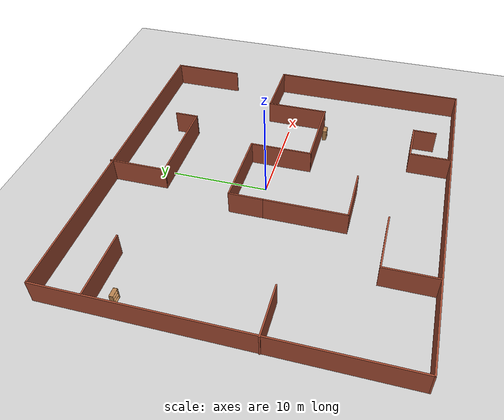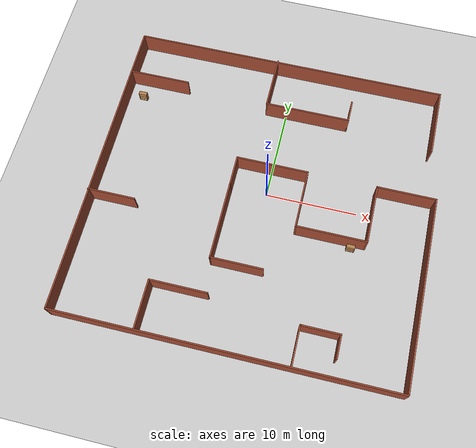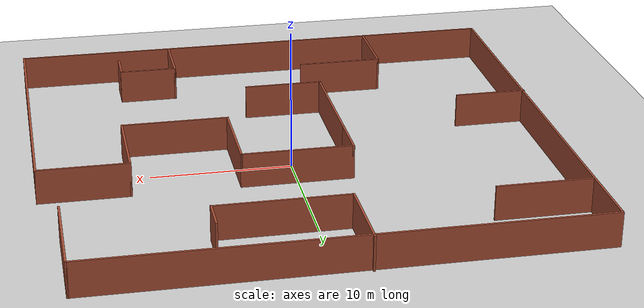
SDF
<sdf version="1.7">
 <world name="default">
  <light name="sun" type="directional">
   <pose>0 0 10 0 -0 0</pose>
   <diffuse>0.8 0.8 0.8 1</diffuse>
   <specular>0.2 0.2 0.2 1</specular>
   <attenuation>
    <range>1000</range>
    <constant>0.9</constant>
    <linear>0.01</linear>
    <quadratic>0.001</quadratic>
   </attenuation>
   <direction>-0.5 0.1 -0.9</direction>
   <spot><inner_angle>0</inner_angle><outer_angle>0</outer_angle><falloff>0</falloff></spot>
  </light>
  <model name="ground_plane">
   <static>1</static>
   <link name="link">
    <collision name="collision">
     <geometry><plane><normal>0 0 1</normal><size>100 100</size></plane></geometry>
     <surface>
      <contact><collide_bitmask>65535</collide_bitmask></contact>
      <friction><ode><mu>100</mu><mu2>50</mu2></ode></friction>
     </surface>
    </collision>
    <visual name="visual">
     <cast_shadows>0</cast_shadows>
     <geometry><plane><normal>0 0 1</normal><size>100 100</size></plane></geometry>
     <material>
      <script><uri>file://media/materials/scripts/gazebo.material</uri><name>Gazebo/Grey</name></script>
     </material>
    </visual>
   </link>
  </model>
  <gravity>0 0 -9.8</gravity>
  <magnetic_field>6e-06 2.3e-05 -4.2e-05</magnetic_field>
  <atmosphere type="adiabatic"/>
  <physics type="ode">
   <max_step_size>0.001</max_step_size>
   <real_time_factor>1</real_time_factor>
   <real_time_update_rate>1000</real_time_update_rate>
  </physics>
  <scene><ambient>0.4 0.4 0.4 1</ambient><background>0.7 0.7 0.7 1</background><shadows>1</shadows></scene>
  <audio><device>default</device></audio>
  <spherical_coordinates>
   <surface_model>EARTH_WGS84</surface_model>
   <latitude_deg>0</latitude_deg>
   <longitude_deg>0</longitude_deg>
   <elevation>0</elevation>
   <heading_deg>0</heading_deg>
  </spherical_coordinates>
  <model name="first_house">
   <pose>-0.306004 -1.08182 0 0 -0 0</pose>
   <link name="Wall_10">
    <collision name="Wall_10_Collision">
     <geometry><box><size>36.5 0.15 2.5</size></box></geometry>
     <pose>0 0 1.25 0 -0 0</pose>
    </collision>
    <visual name="Wall_10_Visual">
     <pose>0 0 1.25 0 -0 0</pose>
     <geometry><box><size>36.5 0.15 2.5</size></box></geometry>
     <material>
      <script><uri>file://media/materials/scripts/gazebo.material</uri><name>Gazebo/Bricks</name></script>
      <ambient>1 1 1 1</ambient>
     </material>
     <meta><layer>0</layer></meta>
    </visual>
    <pose>0.030999 -16.8913 0 0 -0 3.14159</pose>
   </link>
   <link name="Wall_11">
    <collision name="Wall_11_Collision">
     <geometry><box><size>33.75 0.15 2.5</size></box></geometry>
     <pose>0 0 1.25 0 -0 0</pose>
    </collision>
    <visual name="Wall_11_Visual">
     <pose>0 0 1.25 0 -0 0</pose>
     <geometry><box><size>33.75 0.15 2.5</size></box></geometry>
     <material>
      <script><uri>file://media/materials/scripts/gazebo.material</uri><name>Gazebo/Bricks</name></script>
      <ambient>1 1 1 1</ambient>
     </material>
     <meta><layer>0</layer></meta>
    </visual>
    <pose>-18.144 -0.091312 0 0 -0 1.5708</pose>
   </link>
   <link name="Wall_16">
    <collision name="Wall_16_Collision">
     <geometry><box><size>8.5 0.15 2.5</size></box></geometry>
     <pose>0 0 1.25 0 -0 0</pose>
    </collision>
    <visual name="Wall_16_Visual">
     <pose>0 0 1.25 0 -0 0</pose>
     <geometry><box><size>8.5 0.15 2.5</size></box></geometry>
     <material>
      <script><uri>file://media/materials/scripts/gazebo.material</uri><name>Gazebo/Bricks</name></script>
      <ambient>1 1 1 1</ambient>
     </material>
     <meta><layer>0</layer></meta>
    </visual>
    <pose>-3.594 -3.81631 0 0 -0 -1.5708</pose>
   </link>
   <link name="Wall_17">
    <collision name="Wall_17_Collision">
     <geometry><box><size>5.75 0.15 2.5</size></box></geometry>
     <pose>0 0 1.25 0 -0 0</pose>
    </collision>
    <visual name="Wall_17_Visual">
     <pose>0 0 1.25 0 -0 0</pose>
     <geometry><box><size>5.75 0.15 2.5</size></box></geometry>
     <material>
      <script><uri>file://media/materials/scripts/gazebo.material</uri><name>Gazebo/Bricks</name></script>
      <ambient>1 1 1 1</ambient>
     </material>
     <meta><layer>0</layer></meta>
    </visual>
    <pose>-0.794001 -7.99131 0 0 -0 0</pose>
   </link>
   <link name="Wall_19">
    <collision name="Wall_19_Collision">
     <geometry><box><size>5.25 0.15 2.5</size></box></geometry>
     <pose>0 0 1.25 0 -0 0</pose>
    </collision>
    <visual name="Wall_19_Visual">
     <pose>0 0 1.25 0 -0 0</pose>
     <geometry><box><size>5.25 0.15 2.5</size></box></geometry>
     <material>
      <script><uri>file://media/materials/scripts/gazebo.material</uri><name>Gazebo/Bricks</name></script>
      <ambient>1 1 1 1</ambient>
     </material>
     <meta><layer>0</layer></meta>
    </visual>
    <pose>-15.656 -3.56268 0 0 -0 0</pose>
   </link>
   <link name="Wall_23">
    <collision name="Wall_23_Collision">
     <geometry><box><size>6.75 0.15 2.5</size></box></geometry>
     <pose>0 0 1.25 0 -0 0</pose>
    </collision>
    <visual name="Wall_23_Visual">
     <pose>0 0 1.25 0 -0 0</pose>
     <geometry><box><size>6.75 0.15 2.5</size></box></geometry>
     <material>
      <script><uri>file://media/materials/scripts/gazebo.material</uri><name>Gazebo/Bricks</name></script>
      <ambient>1 1 1 1</ambient>
     </material>
     <meta><layer>0</layer></meta>
    </visual>
    <pose>-14.7188 11.6902 0 0 -0 0</pose>
   </link>
   <link name="Wall_25">
    <collision name="Wall_25_Collision">
     <geometry><box><size>35.25 0.15 2.5</size></box></geometry>
     <pose>0 0 1.25 0 -0 0</pose>
    </collision>
    <visual name="Wall_25_Visual">
     <pose>0 0 1.25 0 -0 0</pose>
     <geometry><box><size>35.25 0.15 2.5</size></box></geometry>
     <material>
      <script><uri>file://media/materials/scripts/gazebo.material</uri><name>Gazebo/Bricks</name></script>
      <ambient>1 1 1 1</ambient>
     </material>
     <meta><layer>0</layer></meta>
    </visual>
    <pose>-0.594001 16.7087 0 0 -0 0</pose>
   </link>
   <link name="Wall_26">
    <collision name="Wall_26_Collision">
     <geometry><box><size>7.5 0.15 2.5</size></box></geometry>
     <pose>0 0 1.25 0 -0 0</pose>
    </collision>
    <visual name="Wall_26_Visual">
     <pose>0 0 1.25 0 -0 0</pose>
     <geometry><box><size>7.5 0.15 2.5</size></box></geometry>
     <material>
      <script><uri>file://media/materials/scripts/gazebo.material</uri><name>Gazebo/Bricks</name></script>
      <ambient>1 1 1 1</ambient>
     </material>
     <meta><layer>0</layer></meta>
    </visual>
    <pose>16.956 13.0337 0 0 -0 -1.5708</pose>
   </link>
   <link name="Wall_28">
    <collision name="Wall_28_Collision">
     <geometry><box><size>5.25 0.15 2.5</size></box></geometry>
     <pose>0 0 1.25 0 -0 0</pose>
    </collision>
    <visual name="Wall_28_Visual">
     <pose>0 0 1.25 0 -0 0</pose>
     <geometry><box><size>5.25 0.15 2.5</size></box></geometry>
     <material>
      <script><uri>file://media/materials/scripts/gazebo.material</uri><name>Gazebo/Bricks</name></script>
      <ambient>1 1 1 1</ambient>
     </material>
     <meta><layer>0</layer></meta>
    </visual>
    <pose>-8.98255 -14.2361 0 0 -0 1.5708</pose>
   </link>
   <link name="Wall_29">
    <collision name="Wall_29_Collision">
     <geometry><box><size>6.25 0.15 2.5</size></box></geometry>
     <pose>0 0 1.25 0 -0 0</pose>
    </collision>
    <visual name="Wall_29_Visual">
     <pose>0 0 1.25 0 -0 0</pose>
     <geometry><box><size>6.25 0.15 2.5</size></box></geometry>
     <material>
      <script><uri>file://media/materials/scripts/gazebo.material</uri><name>Gazebo/Bricks</name></script>
      <ambient>1 1 1 1</ambient>
     </material>
     <meta><layer>0</layer></meta>
    </visual>
    <pose>-5.93255 -11.6861 0 0 -0 0</pose>
   </link>
   <link name="Wall_3">
    <collision name="Wall_3_Collision">
     <geometry><box><size>3.5 0.15 2.5</size></box></geometry>
     <pose>0 0 1.25 0 -0 0</pose>
    </collision>
    <visual name="Wall_3_Visual">
     <pose>0 0 1.25 0 -0 0</pose>
     <geometry><box><size>3.5 0.15 2.5</size></box></geometry>
     <material>
      <script><uri>file://media/materials/scripts/gazebo.material</uri><name>Gazebo/Bricks</name></script>
      <ambient>1 1 1 1</ambient>
     </material>
     <meta><layer>0</layer></meta>
    </visual>
    <pose>-3.594 2.03369 0 0 -0 1.5708</pose>
   </link>
   <link name="Wall_31">
    <collision name="Wall_31_Collision">
     <geometry><box><size>4.25 0.15 2.5</size></box></geometry>
     <pose>0 0 1.25 0 -0 0</pose>
    </collision>
    <visual name="Wall_31_Visual">
     <pose>0 0 1.25 0 -0 0</pose>
     <geometry><box><size>4.25 0.15 2.5</size></box></geometry>
     <material>
      <script><uri>file://media/materials/scripts/gazebo.material</uri><name>Gazebo/Bricks</name></script>
      <ambient>1 1 1 1</ambient>
     </material>
     <meta><layer>0</layer></meta>
    </visual>
    <pose>6.85713 -14.7403 0 0 -0 1.5708</pose>
   </link>
   <link name="Wall_32">
    <collision name="Wall_32_Collision">
     <geometry><box><size>4.25 0.15 2.5</size></box></geometry>
     <pose>0 0 1.25 0 -0 0</pose>
    </collision>
    <visual name="Wall_32_Visual">
     <pose>0 0 1.25 0 -0 0</pose>
     <geometry><box><size>4.25 0.15 2.5</size></box></geometry>
     <material>
      <script><uri>file://media/materials/scripts/gazebo.material</uri><name>Gazebo/Bricks</name></script>
      <ambient>1 1 1 1</ambient>
     </material>
     <meta><layer>0</layer></meta>
    </visual>
    <pose>8.90713 -12.6903 0 0 -0 0</pose>
   </link>
   <link name="Wall_33">
    <collision name="Wall_33_Collision">
     <geometry><box><size>2.5 0.15 2.5</size></box></geometry>
     <pose>0 0 1.25 0 -0 0</pose>
    </collision>
    <visual name="Wall_33_Visual">
     <pose>0 0 1.25 0 -0 0</pose>
     <geometry><box><size>2.5 0.15 2.5</size></box></geometry>
     <material>
      <script><uri>file://media/materials/scripts/gazebo.material</uri><name>Gazebo/Bricks</name></script>
      <ambient>1 1 1 1</ambient>
     </material>
     <meta><layer>0</layer></meta>
    </visual>
    <pose>10.9571 -13.8653 0 0 -0 -1.5708</pose>
   </link>
   <link name="Wall_35">
    <collision name="Wall_35_Collision">
     <geometry><box><size>6 0.15 2.5</size></box></geometry>
     <pose>0 0 1.25 0 -0 0</pose>
    </collision>
    <visual name="Wall_35_Visual">
     <pose>0 0 1.25 0 -0 0</pose>
     <geometry><box><size>6 0.15 2.5</size></box></geometry>
     <material>
      <script><uri>file://media/materials/scripts/gazebo.material</uri><name>Gazebo/Bricks</name></script>
      <ambient>1 1 1 1</ambient>
     </material>
     <meta><layer>0</layer></meta>
    </visual>
    <pose>-1.9711 13.9663 0 0 -0 -1.5708</pose>
   </link>
   <link name="Wall_36">
    <collision name="Wall_36_Collision">
     <geometry><box><size>9.5 0.15 2.5</size></box></geometry>
     <pose>0 0 1.25 0 -0 0</pose>
    </collision>
    <visual name="Wall_36_Visual">
     <pose>0 0 1.25 0 -0 0</pose>
     <geometry><box><size>9.5 0.15 2.5</size></box></geometry>
     <material>
      <script><uri>file://media/materials/scripts/gazebo.material</uri><name>Gazebo/Bricks</name></script>
      <ambient>1 1 1 1</ambient>
     </material>
     <meta><layer>0</layer></meta>
    </visual>
    <pose>2.7039 11.0413 0 0 -0 0</pose>
   </link>
   <link name="Wall_37">
    <collision name="Wall_37_Collision">
     <geometry><box><size>2.5 0.15 2.5</size></box></geometry>
     <pose>0 0 1.25 0 -0 0</pose>
    </collision>
    <visual name="Wall_37_Visual">
     <pose>0 0 1.25 0 -0 0</pose>
     <geometry><box><size>2.5 0.15 2.5</size></box></geometry>
     <material>
      <script><uri>file://media/materials/scripts/gazebo.material</uri><name>Gazebo/Bricks</name></script>
      <ambient>1 1 1 1</ambient>
     </material>
     <meta><layer>0</layer></meta>
    </visual>
    <pose>7.3789 12.2163 0 0 -0 1.5708</pose>
   </link>
   <link name="Wall_4">
    <collision name="Wall_4_Collision">
     <geometry><box><size>8 0.15 2.5</size></box></geometry>
     <pose>0 0 1.25 0 -0 0</pose>
    </collision>
    <visual name="Wall_4_Visual">
     <pose>0 0 1.25 0 -0 0</pose>
     <geometry><box><size>8 0.15 2.5</size></box></geometry>
     <material>
      <script><uri>file://media/materials/scripts/gazebo.material</uri><name>Gazebo/Bricks</name></script>
      <ambient>1 1 1 1</ambient>
     </material>
     <meta><layer>0</layer></meta>
    </visual>
    <pose>0.330999 3.70869 0 0 -0 0</pose>
   </link>
   <link name="Wall_5">
    <collision name="Wall_5_Collision">
     <geometry><box><size>6.5 0.15 2.5</size></box></geometry>
     <pose>0 0 1.25 0 -0 0</pose>
    </collision>
    <visual name="Wall_5_Visual">
     <pose>0 0 1.25 0 -0 0</pose>
     <geometry><box><size>6.5 0.15 2.5</size></box></geometry>
     <material>
      <script><uri>file://media/materials/scripts/gazebo.material</uri><name>Gazebo/Bricks</name></script>
      <ambient>1 1 1 1</ambient>
     </material>
     <meta><layer>0</layer></meta>
    </visual>
    <pose>4.256 0.533688 0 0 -0 -1.5708</pose>
   </link>
   <link name="Wall_6">
    <collision name="Wall_6_Collision">
     <geometry><box><size>7.75 0.15 2.5</size></box></geometry>
     <pose>0 0 1.25 0 -0 0</pose>
    </collision>
    <visual name="Wall_6_Visual">
     <pose>0 0 1.25 0 -0 0</pose>
     <geometry><box><size>7.75 0.15 2.5</size></box></geometry>
     <material>
      <script><uri>file://media/materials/scripts/gazebo.material</uri><name>Gazebo/Bricks</name></script>
      <ambient>1 1 1 1</ambient>
     </material>
     <meta><layer>0</layer></meta>
    </visual>
    <pose>8.056 -2.64131 0 0 -0 0</pose>
   </link>
   <link name="Wall_7">
    <collision name="Wall_7_Collision">
     <geometry><box><size>6.5 0.15 2.5</size></box></geometry>
     <pose>0 0 1.25 0 -0 0</pose>
    </collision>
    <visual name="Wall_7_Visual">
     <pose>0 0 1.25 0 -0 0</pose>
     <geometry><box><size>6.5 0.15 2.5</size></box></geometry>
     <material>
      <script><uri>file://media/materials/scripts/gazebo.material</uri><name>Gazebo/Bricks</name></script>
      <ambient>1 1 1 1</ambient>
     </material>
     <meta><layer>0</layer></meta>
    </visual>
    <pose>11.856 0.533688 0 0 -0 1.5708</pose>
   </link>
   <link name="Wall_8">
    <collision name="Wall_8_Collision">
     <geometry><box><size>6.5 0.15 2.5</size></box></geometry>
     <pose>0 0 1.25 0 -0 0</pose>
    </collision>
    <visual name="Wall_8_Visual">
     <pose>0 0 1.25 0 -0 0</pose>
     <geometry><box><size>6.5 0.15 2.5</size></box></geometry>
     <material>
      <script><uri>file://media/materials/scripts/gazebo.material</uri><name>Gazebo/Bricks</name></script>
      <ambient>1 1 1 1</ambient>
     </material>
     <meta><layer>0</layer></meta>
    </visual>
    <pose>15.031 3.70869 0 0 -0 0</pose>
   </link>
   <link name="Wall_9">
    <collision name="Wall_9_Collision">
     <geometry><box><size>20.75 0.15 2.5</size></box></geometry>
     <pose>0 0 1.25 0 -0 0</pose>
    </collision>
    <visual name="Wall_9_Visual">
     <pose>0 0 1.25 0 -0 0</pose>
     <geometry><box><size>20.75 0.15 2.5</size></box></geometry>
     <material>
      <script><uri>file://media/materials/scripts/gazebo.material</uri><name>Gazebo/Bricks</name></script>
      <ambient>1 1 1 1</ambient>
     </material>
     <meta><layer>0</layer></meta>
    </visual>
    <pose>18.206 -6.59131 0 0 -0 -1.5708</pose>
   </link>
   <static>1</static>
  </model>
  <model name="bookshelf">
   <static>1</static>
   <link name="link">
    <inertial><mass>1</mass></inertial>
    <collision name="back">
     <pose>0 0.005 0.6 0 -0 0</pose>
     <geometry><box><size>0.9 0.01 1.2</size></box></geometry>
    </collision>
    <visual name="visual1">
     <pose>0 0.005 0.6 0 -0 0</pose>
     <geometry><box><size>0.9 0.01 1.2</size></box></geometry>
     <material>
      <script><uri>file://media/materials/scripts/gazebo.material</uri><name>Gazebo/Wood</name></script>
     </material>
    </visual>
    <collision name="left_side">
     <pose>0.45 -0.195 0.6 0 -0 0</pose>
     <geometry><box><size>0.02 0.4 1.2</size></box></geometry>
    </collision>
    <visual name="visual2">
     <pose>0.45 -0.195 0.6 0 -0 0</pose>
     <geometry><box><size>0.02 0.4 1.2</size></box></geometry>
     <material>
      <script><uri>file://media/materials/scripts/gazebo.material</uri><name>Gazebo/Wood</name></script>
     </material>
    </visual>
    <collision name="right_side">
     <pose>-0.45 -0.195 0.6 0 -0 0</pose>
     <geometry><box><size>0.02 0.4 1.2</size></box></geometry>
    </collision>
    <visual name="visual3">
     <pose>-0.45 -0.195 0.6 0 -0 0</pose>
     <geometry><box><size>0.02 0.4 1.2</size></box></geometry>
     <material>
      <script><uri>file://media/materials/scripts/gazebo.material</uri><name>Gazebo/Wood</name></script>
     </material>
    </visual>
    <collision name="bottom">
     <pose>0 -0.195 0.03 0 -0 0</pose>
     <geometry><box><size>0.88 0.4 0.06</size></box></geometry>
    </collision>
    <visual name="visual4">
     <pose>0 -0.195 0.03 0 -0 0</pose>
     <geometry><box><size>0.88 0.4 0.06</size></box></geometry>
     <material>
      <script><uri>file://media/materials/scripts/gazebo.material</uri><name>Gazebo/Wood</name></script>
     </material>
    </visual>
    <collision name="top">
     <pose>0 -0.195 1.19 0 -0 0</pose>
     <geometry><box><size>0.88 0.4 0.02</size></box></geometry>
    </collision>
    <visual name="visual5">
     <pose>0 -0.195 1.19 0 -0 0</pose>
     <geometry><box><size>0.88 0.4 0.02</size></box></geometry>
     <material>
      <script><uri>file://media/materials/scripts/gazebo.material</uri><name>Gazebo/Wood</name></script>
     </material>
    </visual>
    <collision name="low_shelf">
     <pose>0 -0.195 0.43 0 -0 0</pose>
     <geometry><box><size>0.88 0.4 0.02</size></box></geometry>
    </collision>
    <visual name="visual6">
     <pose>0 -0.195 0.43 0 -0 0</pose>
     <geometry><box><size>0.88 0.4 0.02</size></box></geometry>
     <material>
      <script><uri>file://media/materials/scripts/gazebo.material</uri><name>Gazebo/Wood</name></script>
     </material>
    </visual>
    <collision name="high_shelf">
     <pose>0 -0.195 0.8 0 -0 0</pose>
     <geometry><box><size>0.88 0.4 0.02</size></box></geometry>
    </collision>
    <visual name="visual7">
     <pose>0 -0.195 0.8 0 -0 0</pose>
     <geometry><box><size>0.88 0.4 0.02</size></box></geometry>
     <material>
      <script><uri>file://media/materials/scripts/gazebo.material</uri><name>Gazebo/Wood</name></script>
     </material>
    </visual>
   </link>
   <pose>-16.7291 8.96853 0 0 -0 0</pose>
  </model>
  <model name="bookshelf_0">
   <static>1</static>
   <link name="link">
    <inertial><mass>1</mass></inertial>
    <collision name="back">
     <pose>0 0.005 0.6 0 -0 0</pose>
     <geometry><box><size>0.9 0.01 1.2</size></box></geometry>
    </collision>
    <visual name="visual1">
     <pose>0 0.005 0.6 0 -0 0</pose>
     <geometry><box><size>0.9 0.01 1.2</size></box></geometry>
     <material>
      <script><uri>file://media/materials/scripts/gazebo.material</uri><name>Gazebo/Wood</name></script>
     </material>
    </visual>
    <collision name="left_side">
     <pose>0.45 -0.195 0.6 0 -0 0</pose>
     <geometry><box><size>0.02 0.4 1.2</size></box></geometry>
    </collision>
    <visual name="visual2">
     <pose>0.45 -0.195 0.6 0 -0 0</pose>
     <geometry><box><size>0.02 0.4 1.2</size></box></geometry>
     <material>
      <script><uri>file://media/materials/scripts/gazebo.material</uri><name>Gazebo/Wood</name></script>
     </material>
    </visual>
    <collision name="right_side">
     <pose>-0.45 -0.195 0.6 0 -0 0</pose>
     <geometry><box><size>0.02 0.4 1.2</size></box></geometry>
    </collision>
    <visual name="visual3">
     <pose>-0.45 -0.195 0.6 0 -0 0</pose>
     <geometry><box><size>0.02 0.4 1.2</size></box></geometry>
     <material>
      <script><uri>file://media/materials/scripts/gazebo.material</uri><name>Gazebo/Wood</name></script>
     </material>
    </visual>
    <collision name="bottom">
     <pose>0 -0.195 0.03 0 -0 0</pose>
     <geometry><box><size>0.88 0.4 0.06</size></box></geometry>
    </collision>
    <visual name="visual4">
     <pose>0 -0.195 0.03 0 -0 0</pose>
     <geometry><box><size>0.88 0.4 0.06</size></box></geometry>
     <material>
      <script><uri>file://media/materials/scripts/gazebo.material</uri><name>Gazebo/Wood</name></script>
     </material>
    </visual>
    <collision name="top">
     <pose>0 -0.195 1.19 0 -0 0</pose>
     <geometry><box><size>0.88 0.4 0.02</size></box></geometry>
    </collision>
    <visual name="visual5">
     <pose>0 -0.195 1.19 0 -0 0</pose>
     <geometry><box><size>0.88 0.4 0.02</size></box></geometry>
     <material>
      <script><uri>file://media/materials/scripts/gazebo.material</uri><name>Gazebo/Wood</name></script>
     </material>
    </visual>
    <collision name="low_shelf">
     <pose>0 -0.195 0.43 0 -0 0</pose>
     <geometry><box><size>0.88 0.4 0.02</size></box></geometry>
    </collision>
    <visual name="visual6">
     <pose>0 -0.195 0.43 0 -0 0</pose>
     <geometry><box><size>0.88 0.4 0.02</size></box></geometry>
     <material>
      <script><uri>file://media/materials/scripts/gazebo.material</uri><name>Gazebo/Wood</name></script>
     </material>
    </visual>
    <collision name="high_shelf">
     <pose>0 -0.195 0.8 0 -0 0</pose>
     <geometry><box><size>0.88 0.4 0.02</size></box></geometry>
    </collision>
    <visual name="visual7">
     <pose>0 -0.195 0.8 0 -0 0</pose>
     <geometry><box><size>0.88 0.4 0.02</size></box></geometry>
     <material>
      <script><uri>file://media/materials/scripts/gazebo.material</uri><name>Gazebo/Wood</name></script>
     </material>
    </visual>
   </link>
   <pose>10.0577 -3.94919 0 0 -0 0</pose>
  </model>
 </world>
</sdf>
